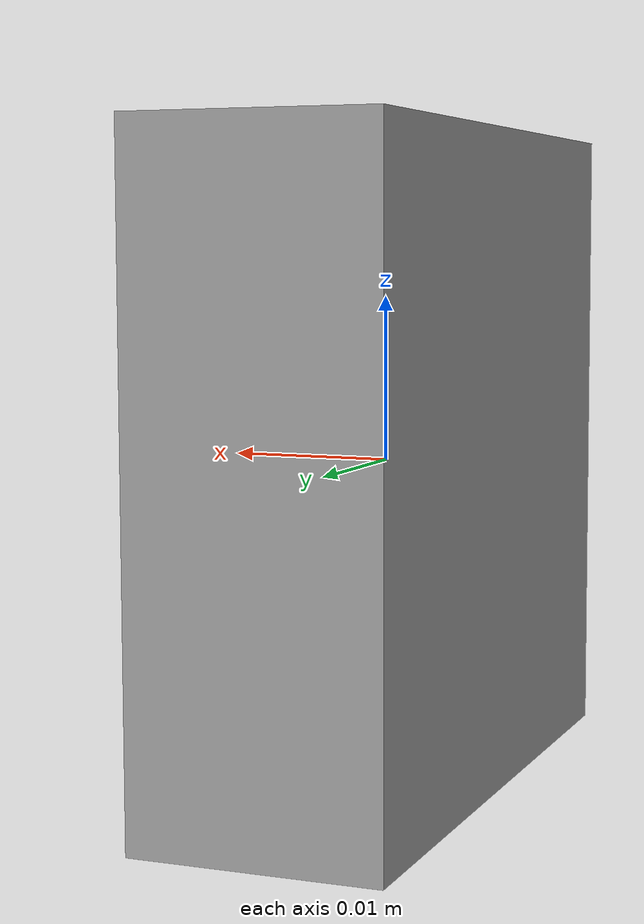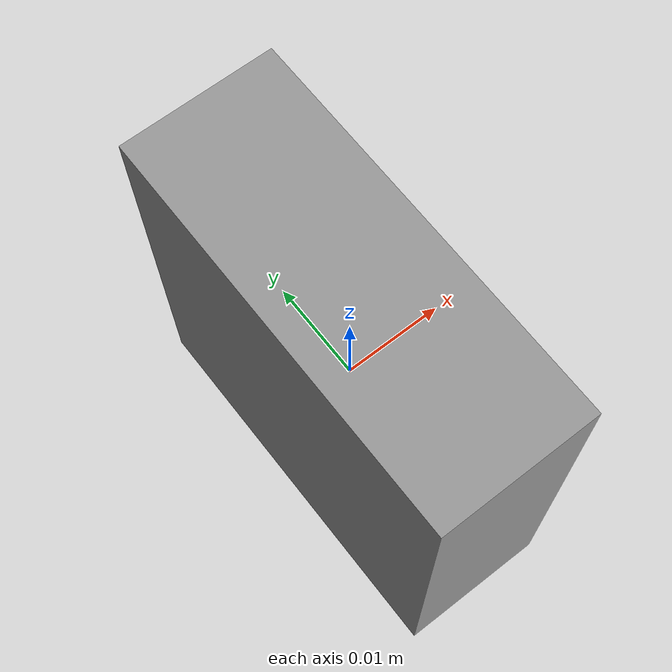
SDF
<?xml version='1.0'?>
<sdf version='1.7'>
  <model name='rgb_cam'>
    <link name='link_0'>
      <inertial>
        <mass>0.03</mass>
        <inertia>
          <ixx>0.0001</ixx>
          <ixy>0</ixy>
          <ixz>0</ixz>
          <iyy>0.0001</iyy>
          <iyz>0</iyz>
          <izz>0.0001</izz>
        </inertia>
        <pose>0 0 0 0 -0 0</pose>
      </inertial>
      <pose>-0 -0 0 0 -0 0</pose>
      <gravity>1</gravity>
      <self_collide>0</self_collide>
      <kinematic>0</kinematic>
      <enable_wind>0</enable_wind>
      <visual name='visual'>
        <pose>0 0 0 0 -0 0</pose>
        <geometry>
          <box>
            <size>0.015 0.04 0.04</size>
          </box>
        </geometry>
        <material>
          <lighting>1</lighting>
          <script>
            <uri>file://media/materials/scripts/gazebo.material</uri>
            <name>Gazebo/Grey</name>
          </script>
          <shader type='pixel'>
            <normal_map>__default__</normal_map>
          </shader>
          <ambient>0.3 0.3 0.3 1</ambient>
          <diffuse>0.7 0.7 0.7 1</diffuse>
          <specular>0.01 0.01 0.01 1</specular>
          <emissive>0 0 0 1</emissive>
        </material>
        <transparency>0</transparency>
        <cast_shadows>1</cast_shadows>
      </visual>
      <sensor type="camera" name="camera_node">
        <update_rate>15.0</update_rate>
        <camera name="head">
            <horizontal_fov>1.3962634</horizontal_fov>
            <image>
                <width>1920</width>
                <height>1080</height>
                <format>R8G8B8</format>
            </image>
            <clip>
                <near>0.02</near>
                <far>300</far>
            </clip>
            <noise>
                <type>gaussian</type>
                <mean>0.0</mean>
                <stddev>0.007</stddev>
            </noise>
        </camera>
        <plugin name="gazebo_camera" filename="libgazebo_ros_camera.so">
            <alwaysOn>true</alwaysOn>
            <updateRate>0.0</updateRate>
            <cameraName>/camera</cameraName>
            <imageTopicName>image_raw</imageTopicName>
            <cameraInfoTopicName>camera_info</cameraInfoTopicName>
            <frameName>camera_link</frameName>
            <hackBaseline>0.07</hackBaseline>
            <distortionK1>0.0</distortionK1>
            <distortionK2>0.0</distortionK2>
            <distortionK3>0.0</distortionK3>
            <distortionT1>0.0</distortionT1>
            <distortionT2>0.0</distortionT2>
        </plugin>
      </sensor>
    </link>
    <static>0</static>
    <allow_auto_disable>1</allow_auto_disable>
  </model>
</sdf>
